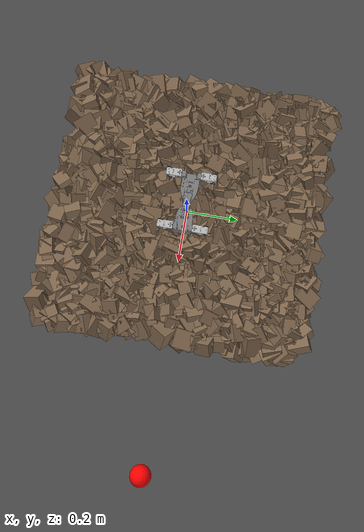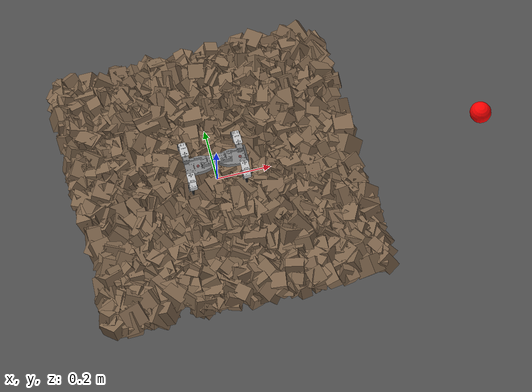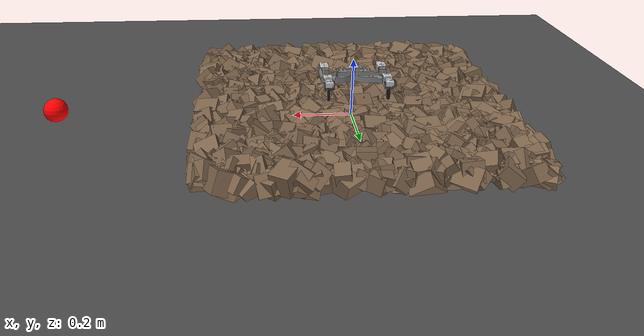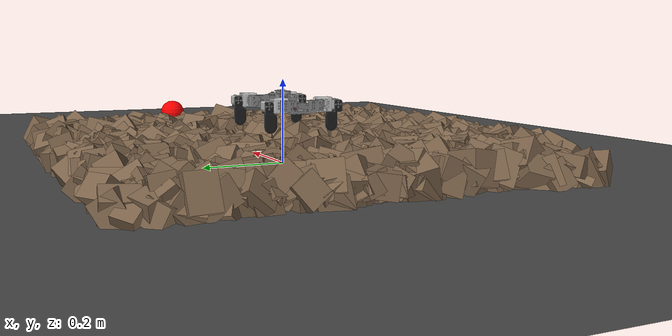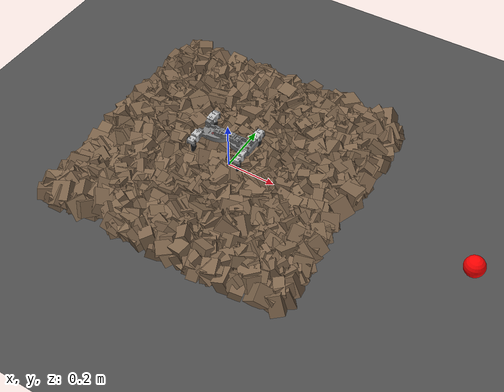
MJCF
<?xml version='1.0' encoding='utf-8'?>
<mujoco model="salamander_description">
  <include file="C:\Users\kevin\college_classes\SophomoreSpring\MiniRO\mujoco_box\assets\experiments\setup\../terrain_models\craggy_cliff_terrain.xml" /><compiler angle="radian" />
  <option solver="Newton" tolerance="1e-6" integrator="implicitfast" gravity="0 0 -9.81" />
  <include file="act2.xml" />

  <visual>
    <rgba haze="0.15 0.25 0.35 1" />
    <quality shadowsize="4096" />
    <map stiffness="700" shadowscale="0.5" fogstart="1" fogend="15" zfar="40" haze="1" />
  </visual>

  <asset>

    <texture type="skybox" builtin="gradient" rgb1="0.3 0.5 0.7" rgb2="0 0 0" width="512" height="512" />
    <texture name="texplane" type="2d" builtin="checker" rgb1=".2 .3 .4" rgb2=".1 0.15 0.2" width="512" height="512" mark="cross" markrgb=".8 .8 .8" />
    <material name="matplane" reflectance="0.3" texture="texplane" texrepeat="10 10" texuniform="true" />
    <material name="slope_mat" reflectance="0.3" rgba="1 1 0 .25" />

  <mesh file="C:\Users\kevin\college_classes\SophomoreSpring\MiniRO\mujoco_box\assets\experiments\setup\..\model_assets\salamander\meshes\body_front_link.STL" name="body_front_link" /><mesh file="C:\Users\kevin\college_classes\SophomoreSpring\MiniRO\mujoco_box\assets\experiments\setup\..\model_assets\salamander\meshes\body_rear_link.STL" name="body_rear_link" /><mesh file="C:\Users\kevin\college_classes\SophomoreSpring\MiniRO\mujoco_box\assets\experiments\setup\..\model_assets\salamander\meshes\dummy_base_link.STL" name="dummy_base_link" /><mesh file="C:\Users\kevin\college_classes\SophomoreSpring\MiniRO\mujoco_box\assets\experiments\setup\..\model_assets\salamander\meshes\leg1_link.STL" name="leg1_link" /><mesh file="C:\Users\kevin\college_classes\SophomoreSpring\MiniRO\mujoco_box\assets\experiments\setup\..\model_assets\salamander\meshes\leg2_link.STL" name="leg2_link" /><mesh file="C:\Users\kevin\college_classes\SophomoreSpring\MiniRO\mujoco_box\assets\experiments\setup\..\model_assets\salamander\meshes\leg3_link.STL" name="leg3_link" /><mesh file="C:\Users\kevin\college_classes\SophomoreSpring\MiniRO\mujoco_box\assets\experiments\setup\..\model_assets\salamander\meshes\leg4_link.STL" name="leg4_link" /><mesh file="C:\Users\kevin\college_classes\SophomoreSpring\MiniRO\mujoco_box\assets\experiments\setup\..\model_assets\salamander\meshes\shoulder1_link.STL" name="shoulder1_link" /><mesh file="C:\Users\kevin\college_classes\SophomoreSpring\MiniRO\mujoco_box\assets\experiments\setup\..\model_assets\salamander\meshes\shoulder2_link.STL" name="shoulder2_link" /><mesh file="C:\Users\kevin\college_classes\SophomoreSpring\MiniRO\mujoco_box\assets\experiments\setup\..\model_assets\salamander\meshes\shoulder3_link.STL" name="shoulder3_link" /><mesh file="C:\Users\kevin\college_classes\SophomoreSpring\MiniRO\mujoco_box\assets\experiments\setup\..\model_assets\salamander\meshes\shoulder4_link.STL" name="shoulder4_link" /></asset>

  <worldbody>
    <body name="ball" pos="1 0 .04">
      <geom type="sphere" size=".04" rgba="1 0 0 1" />
    </body>
    <light diffuse=".4 .4 .4" specular="0.1 0.1 0.1" pos="0 0 2.0" dir="0 0 -1" castshadow="false" />
    <light directional="true" diffuse=".8 .8 .8" specular="0.2 0.2 0.2" pos="0 0 4" dir="0 0 -1" />
    <geom name="ground" type="plane" size="0 0 1" pos="0 0 0" quat="1 0 0 0" material="matplane" condim="1" />

    <body name="body_rear_link" pos="0 0 0.0856">
      <geom pos="0 0 0.0856" quat="1 0 0 0" type="mesh" mesh="body_rear_link" />
      <joint name="fall" type="free" pos="0 0 0" axis="0 0 1" />
      <site name="torso_sensors" pos="-0.0682 0 .048" rgba="0.5 0 0 .5" />
      <body name="shoulder3_link" pos="-0.10533 0.043967 0.0784">
        <geom type="mesh" rgba="0.75294 0.75294 0.75294 1" mesh="shoulder3_link" />
        <inertial pos="-0.00035612 0.027895 -0.015524" quat="0.830241 0.554769 0.0182893 0.0509566" mass="0.022828" diaginertia="3.78438e-06 3.41587e-06 3.14145e-06" />
        <joint name="shoulder3_joint" type="hinge" pos="0 0 0" axis="0 0 1" range="-1.4 1.4" actuatorfrcrange="-0.39 0.39" frictionloss="0.1" />
        <body name="leg3_link" pos="-0.0174 0.041 -0.0164">
          <inertial pos="0.015303 -0.0075022 -0.031486" quat="0.991718 -0.121381 -0.0411625 0.00821591" mass="0.01174" diaginertia="4.05823e-06 3.86047e-06 1.0964e-06" />
          <joint name="leg3_joint" type="hinge" pos="0 0 0" axis="1 0 0" range="0 1.6" actuatorfrcrange="-0.39 0.39" frictionloss="0.1" />
          <geom type="mesh" rgba="0.10196 0.10196 0.10196 1" mesh="leg3_link" />
        </body>
      </body>
      <body name="shoulder4_link" pos="-0.10533 -0.044033 0.0784">
        <inertial pos="-0.00035261 -0.027895 -0.015524" quat="0.55469 0.830308 -0.0504036 -0.0191768" mass="0.022828" diaginertia="3.78439e-06 3.41596e-06 3.14135e-06" />
        <joint name="shoulder4_joint" type="hinge" pos="0 0 0" axis="0 0 1" range="-1.4 1.4" actuatorfrcrange="-0.39 0.39" frictionloss="0.1" />
        <geom type="mesh" rgba="0.75294 0.75294 0.75294 1" mesh="shoulder4_link" />
        <body name="leg4_link" pos="-0.0174 -0.041 -0.0164">
          <inertial pos="0.015303 0.0075097 -0.031486" quat="0.991713 0.121232 -0.0407594 -0.0121008" mass="0.01174" diaginertia="4.05702e-06 3.85955e-06 1.09592e-06" />
          <joint name="leg4_joint" type="hinge" pos="0 0 0" axis="1 0 0" range="-1.6 0" actuatorfrcrange="-0.39 0.39" frictionloss="0.1" />
          <geom type="mesh" rgba="0.10196 0.10196 0.10196 1" mesh="leg4_link" />
        </body>
      </body>
      <body name="body_front_link" pos="0.0185 0 0.0881">
        <site name="spinal_sensors" pos="-0.0182 0 0" rgba="0 0 0 .5" />
        <site name="front_sensors" pos="0.0682 0 -.04" rgba="0.5 0 0 .5" />
        <inertial pos="0.056805 2.3159e-05 -0.033606" quat="0.4638 0.4638 -0.53375 0.53375" mass="0.081874" diaginertia="3.73585e-05 2.58825e-05 1.9334e-05" />
        <joint name="spinal_joint" type="hinge" pos="0 0 0" axis="0 0 1" range="-1.5707 1.5707" actuatorfrcrange="-1.52 1.52" frictionloss="0.5" />
        <geom type="mesh" mesh="body_front_link" />
        <site name="tip_sensors" pos="0.09 0 -0.033" />
        <body name="shoulder1_link" pos="0.073327 0.044033 -0.0097">
          <inertial pos="-0.00035612 0.027895 -0.015524" quat="0.830241 0.554769 0.0182893 0.0509566" mass="0.022828" diaginertia="3.78438e-06 3.41587e-06 3.14145e-06" />
          <joint name="shoulder1_joint" type="hinge" pos="0 0 0" axis="0 0 1" range="-1.4 1.4" actuatorfrcrange="-0.39 0.39" frictionloss="0.1" />
          <geom type="mesh" rgba="0.75294 0.75294 0.75294 1" mesh="shoulder1_link" />
          <body name="leg1_link" pos="-0.0174 0.041 -0.0164">
            <inertial pos="0.015303 -0.0075022 -0.031486" quat="0.991718 -0.121381 -0.0411625 0.00821591" mass="0.01174" diaginertia="4.05823e-06 3.86047e-06 1.0964e-06" />
            <joint name="leg1_joint" type="hinge" pos="0 0 0" axis="1 0 0" range="0 1.6" actuatorfrcrange="-0.39 0.39" frictionloss="0.1" />
            <geom type="mesh" rgba="0.10196 0.10196 0.10196 1" mesh="leg1_link" />
          </body>
        </body>
        <body name="shoulder2_link" pos="0.073327 -0.043967 -0.0097">
          <inertial pos="-0.00035261 -0.027895 -0.015524" quat="0.55469 0.830308 -0.0504036 -0.0191768" mass="0.022828" diaginertia="3.78439e-06 3.41596e-06 3.14135e-06" />
          <joint name="shoulder2_joint" type="hinge" pos="0 0 0" axis="0 0 1" range="-1.4 1.4" actuatorfrcrange="-0.39 0.39" frictionloss="0.1" />
          <geom type="mesh" rgba="0.75294 0.75294 0.75294 1" mesh="shoulder2_link" />
          <body name="leg2_link" pos="-0.0174 -0.041 -0.0164">
            <inertial pos="0.015303 0.0075097 -0.031486" quat="0.991713 0.121232 -0.0407594 -0.0121008" mass="0.01174" diaginertia="4.05702e-06 3.85955e-06 1.09592e-06" />
            <joint name="leg2_joint" type="hinge" pos="0 0 0" axis="1 0 0" range="-1.6 0" actuatorfrcrange="-0.39 0.39" frictionloss="0.1" />
            <geom type="mesh" rgba="0.10196 0.10196 0.10196 1" mesh="leg2_link" />
          </body>
        </body>
      </body>
    </body>

  </worldbody>

  <sensor>
    <velocimeter name="velocity" site="tip_sensors" />
    <framequat name="spinal_quat" objtype="site" objname="spinal_sensors" reftype="body" refname="body_rear_link" />
    <gyro name="torso_angular_velocity" site="torso_sensors" />
    <velocimeter name="torso_velocity" site="torso_sensors" />
    <velocimeter name="front_velocity" site="front_sensors" />
  </sensor>
</mujoco>

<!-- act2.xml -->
<mujoco model="motors">
  <!-- Existing XML content -->
  <compiler angle="radian"/>
  <actuator>
    <position joint="spinal_joint" kp=".5" ctrlrange="-1.57 1.57" />
    <position joint="shoulder1_joint" kp=".6" ctrlrange="-1.57 1.57" />
    <position joint="leg1_joint" kp=".5" ctrlrange="-1.57 1.57" />
    <position joint="shoulder2_joint" kp=".6" ctrlrange="-1.57 1.57" />
    <position joint="leg2_joint" kp=".5" ctrlrange="-1.57 1.57" />
    <position joint="shoulder3_joint" kp=".4" ctrlrange="-1.57 1.57" />
    <position joint="leg3_joint" kp=".5" ctrlrange="-1.57 1.57" />
    <position joint="shoulder4_joint" kp=".4" ctrlrange="-1.57 1.57" />
    <position joint="leg4_joint" kp=".5" ctrlrange="-1.57 1.57" />
  </actuator>
</mujoco>
